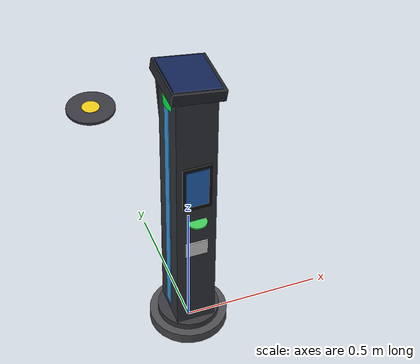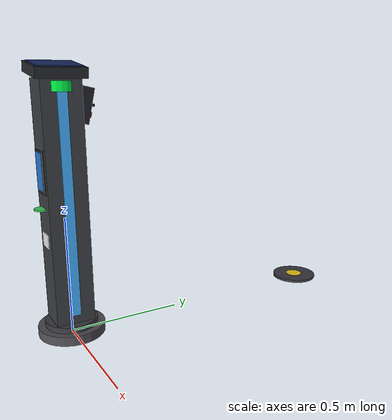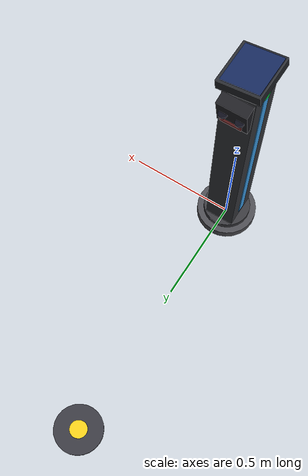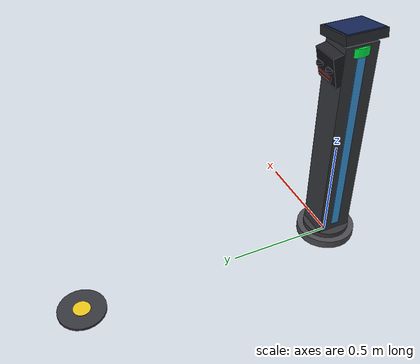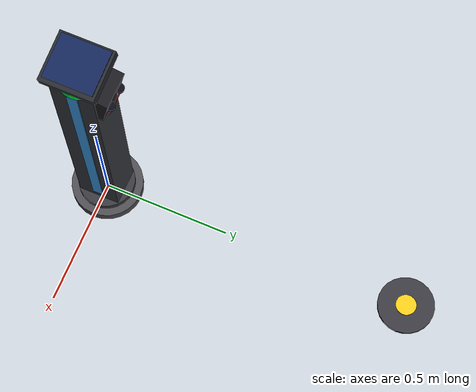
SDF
<?xml version="1.0" ?>
<sdf version="1.8">
  <model name="smart_parking_meter_pole">
    <static>true</static>
    <link name="pole_link">

      <!-- ==================== 物理碰撞剛體 (簡化圓柱體，保護自駕車輪胎與底盤) ==================== -->
      <collision name="pole_col">
        <pose>0 0 0.55 0 0 0</pose>
        <geometry>
          <cylinder>
            <radius>0.10</radius>
            <length>1.10</length>
          </cylinder>
        </geometry>
        <surface>
          <friction>
            <ode>
              <mu>0.8</mu>
              <mu2>0.8</mu2>
            </ode>
          </friction>
        </surface>
      </collision>

      <!-- ==================== 地面安裝底座法蘭盤 (Base Flange & Anchors) ==================== -->
      <visual name="base_flange_vis">
        <pose>0 0 0.02 0 0 0</pose>
        <geometry>
          <cylinder>
            <radius>0.14</radius>
            <length>0.04</length>
          </cylinder>
        </geometry>
        <material>
          <ambient>0.25 0.25 0.27 1</ambient>
          <diffuse>0.30 0.30 0.32 1</diffuse>
        </material>
      </visual>

      <visual name="base_cover_vis">
        <pose>0 0 0.05 0 0 0</pose>
        <geometry>
          <cylinder>
            <radius>0.11</radius>
            <length>0.03</length>
          </cylinder>
        </geometry>
        <material>
          <ambient>0.18 0.18 0.20 1</ambient>
          <diffuse>0.22 0.22 0.24 1</diffuse>
        </material>
      </visual>

      <!-- ==================== 金屬主柱體 (Main Anodized Aluminum Column) ==================== -->
      <visual name="column_vis">
        <pose>0 0 0.55 0 0 0</pose>
        <geometry>
          <box>
            <size>0.14 0.16 1.00</size>
          </box>
        </geometry>
        <material>
          <ambient>0.15 0.16 0.18 1</ambient>
          <diffuse>0.22 0.23 0.25 1</diffuse>
        </material>
      </visual>

      <!-- 側邊保護與修飾裝飾條 (Side Trim Stripes) -->
      <visual name="side_trim_left_vis">
        <pose>0.071 0 0.55 0 0 0</pose>
        <geometry>
          <box>
            <size>0.005 0.04 0.90</size>
          </box>
        </geometry>
        <material>
          <ambient>0.20 0.55 0.85 1</ambient>
          <diffuse>0.25 0.65 0.95 1</diffuse>
          <emissive>0.05 0.15 0.25 1</emissive>
        </material>
      </visual>

      <visual name="side_trim_right_vis">
        <pose>-0.071 0 0.55 0 0 0</pose>
        <geometry>
          <box>
            <size>0.005 0.04 0.90</size>
          </box>
        </geometry>
        <material>
          <ambient>0.20 0.55 0.85 1</ambient>
          <diffuse>0.25 0.65 0.95 1</diffuse>
          <emissive>0.05 0.15 0.25 1</emissive>
        </material>
      </visual>

      <!-- ==================== 頂部太陽能集電板與遮雨頂蓋 (Solar Bevel Top Cap) ==================== -->
      <visual name="top_cap_vis">
        <pose>0 0 1.08 0 0.15 0</pose>
        <geometry>
          <box>
            <size>0.18 0.20 0.04</size>
          </box>
        </geometry>
        <material>
          <ambient>0.12 0.13 0.15 1</ambient>
          <diffuse>0.15 0.16 0.18 1</diffuse>
        </material>
      </visual>

      <visual name="solar_panel_vis">
        <pose>0 0 1.102 0 0.15 0</pose>
        <geometry>
          <box>
            <size>0.16 0.18 0.005</size>
          </box>
        </geometry>
        <material>
          <ambient>0.05 0.10 0.25 1</ambient>
          <diffuse>0.08 0.15 0.35 1</diffuse>
          <specular>0.8 0.8 0.9 1</specular>
        </material>
      </visual>

      <!-- ==================== 車牌辨識雙相機鏡頭艙 (LPR Dual Camera Head - 傾角朝車位) ==================== -->
      <visual name="camera_pod_vis">
        <pose>0 0.085 0.95 -0.22 0 0</pose>
        <geometry>
          <box>
            <size>0.13 0.06 0.14</size>
          </box>
        </geometry>
        <material>
          <ambient>0.10 0.10 0.12 1</ambient>
          <diffuse>0.12 0.12 0.14 1</diffuse>
        </material>
      </visual>

      <!-- 車牌辨識鏡頭 1 (左鏡頭 / 主辨識) -->
      <visual name="camera_lens1_vis">
        <pose>-0.035 0.118 0.95 -0.22 0 0</pose>
        <geometry>
          <cylinder>
            <radius>0.018</radius>
            <length>0.01</length>
          </cylinder>
        </geometry>
        <material>
          <ambient>0.02 0.02 0.05 1</ambient>
          <diffuse>0.05 0.05 0.10 1</diffuse>
          <specular>0.9 0.9 1.0 1</specular>
        </material>
      </visual>

      <!-- 車牌辨識鏡頭 2 (右鏡頭 / 廣角全景監控) -->
      <visual name="camera_lens2_vis">
        <pose>0.035 0.118 0.95 -0.22 0 0</pose>
        <geometry>
          <cylinder>
            <radius>0.018</radius>
            <length>0.01</length>
          </cylinder>
        </geometry>
        <material>
          <ambient>0.02 0.02 0.05 1</ambient>
          <diffuse>0.05 0.05 0.10 1</diffuse>
          <specular>0.9 0.9 1.0 1</specular>
        </material>
      </visual>

      <!-- 夜間紅外線補光燈陣列 (IR Illuminator Array) -->
      <visual name="ir_illuminator_vis">
        <pose>0 0.116 0.91 -0.22 0 0</pose>
        <geometry>
          <box>
            <size>0.09 0.005 0.02</size>
          </box>
        </geometry>
        <material>
          <ambient>0.3 0.1 0.1 1</ambient>
          <diffuse>0.4 0.1 0.1 1</diffuse>
          <emissive>0.2 0.0 0.0 1</emissive>
        </material>
      </visual>

      <!-- ==================== 360° 車位狀態指示燈 (LED Status Light Bar: 空位綠燈) ==================== -->
      <visual name="status_led_vis">
        <pose>0 0 1.02 0 0 0</pose>
        <geometry>
          <cylinder>
            <radius>0.08</radius>
            <length>0.04</length>
          </cylinder>
        </geometry>
        <material>
          <ambient>0.0 0.9 0.2 1</ambient>
          <diffuse>0.0 1.0 0.3 1</diffuse>
          <emissive>0.1 0.8 0.2 1</emissive>
        </material>
      </visual>

      <!-- ==================== 行人人行道繳費與操作觸控面板 (Pedestrian Side Touchscreen) ==================== -->
      <visual name="touchscreen_frame_vis">
        <pose>0 -0.082 0.70 0 0 0</pose>
        <geometry>
          <box>
            <size>0.10 0.008 0.18</size>
          </box>
        </geometry>
        <material>
          <ambient>0.05 0.05 0.05 1</ambient>
          <diffuse>0.08 0.08 0.08 1</diffuse>
        </material>
      </visual>

      <visual name="touchscreen_display_vis">
        <pose>0 -0.087 0.70 0 0 0</pose>
        <geometry>
          <box>
            <size>0.08 0.002 0.15</size>
          </box>
        </geometry>
        <material>
          <ambient>0.10 0.30 0.60 1</ambient>
          <diffuse>0.15 0.45 0.80 1</diffuse>
          <emissive>0.15 0.35 0.60 1</emissive>
        </material>
      </visual>

      <!-- 悠遊卡 / 一卡通 / 信用卡感應區 (Contactless Card Reader) -->
      <visual name="card_reader_vis">
        <pose>0 -0.085 0.55 0 0 0</pose>
        <geometry>
          <cylinder>
            <radius>0.035</radius>
            <length>0.006</length>
          </cylinder>
        </geometry>
        <material>
          <ambient>0.20 0.70 0.30 1</ambient>
          <diffuse>0.25 0.80 0.35 1</diffuse>
        </material>
      </visual>

      <!-- 宏碁智通 / 新竹智慧停車標誌貼牌 (Brand Plaque) -->
      <visual name="brand_plaque_vis">
        <pose>0 -0.082 0.42 0 0 0</pose>
        <geometry>
          <box>
            <size>0.08 0.004 0.06</size>
          </box>
        </geometry>
        <material>
          <ambient>0.8 0.8 0.8 1</ambient>
          <diffuse>0.9 0.9 0.9 1</diffuse>
        </material>
      </visual>

      <!-- ==================== 地面埋設式無線地磁感應器 (Ground Geomagnetic Puck Sensor) ==================== -->
      <!-- 位於車位地面中央 (相對於停車柱路緣向車位內延伸 1.25m) -->
      <visual name="geomagnetic_sensor_puck_vis">
        <pose>0 1.25 0.006 0 0 0</pose>
        <geometry>
          <cylinder>
            <radius>0.11</radius>
            <length>0.012</length>
          </cylinder>
        </geometry>
        <material>
          <ambient>0.18 0.18 0.20 1</ambient>
          <diffuse>0.22 0.22 0.25 1</diffuse>
        </material>
      </visual>

      <visual name="geomagnetic_sensor_core_vis">
        <pose>0 1.25 0.013 0 0 0</pose>
        <geometry>
          <cylinder>
            <radius>0.04</radius>
            <length>0.003</length>
          </cylinder>
        </geometry>
        <material>
          <ambient>0.9 0.7 0.0 1</ambient>
          <diffuse>0.95 0.8 0.1 1</diffuse>
        </material>
      </visual>

    </link>
  </model>
</sdf>
